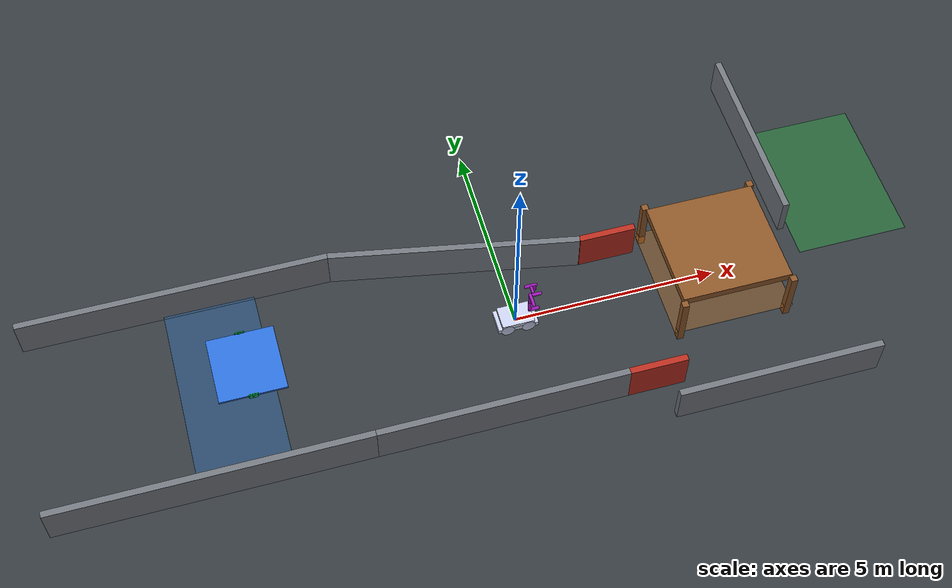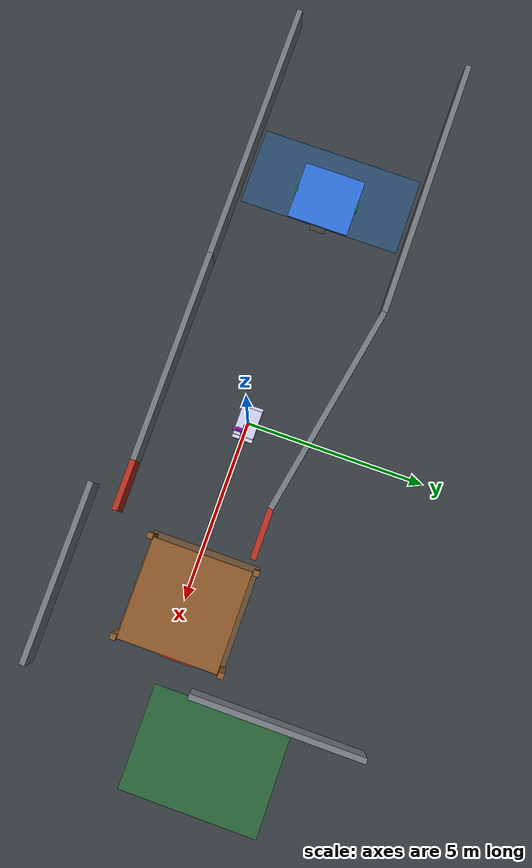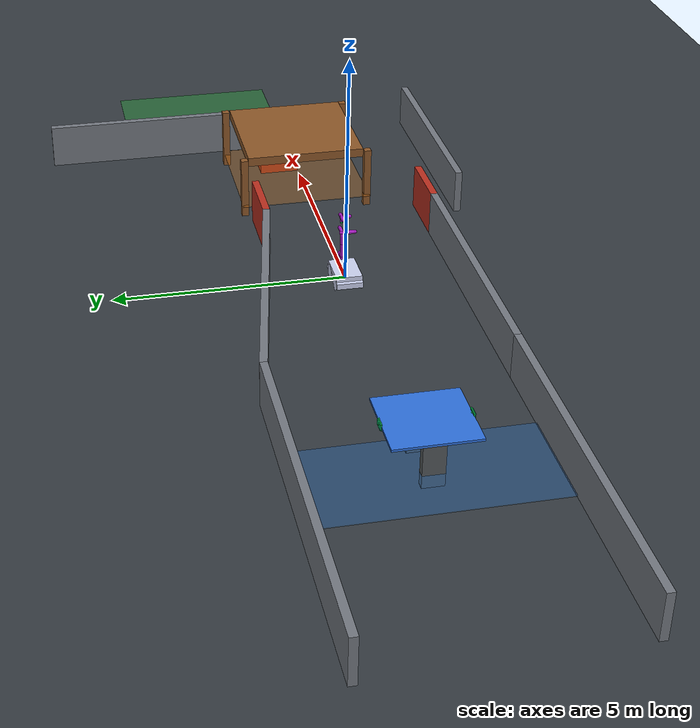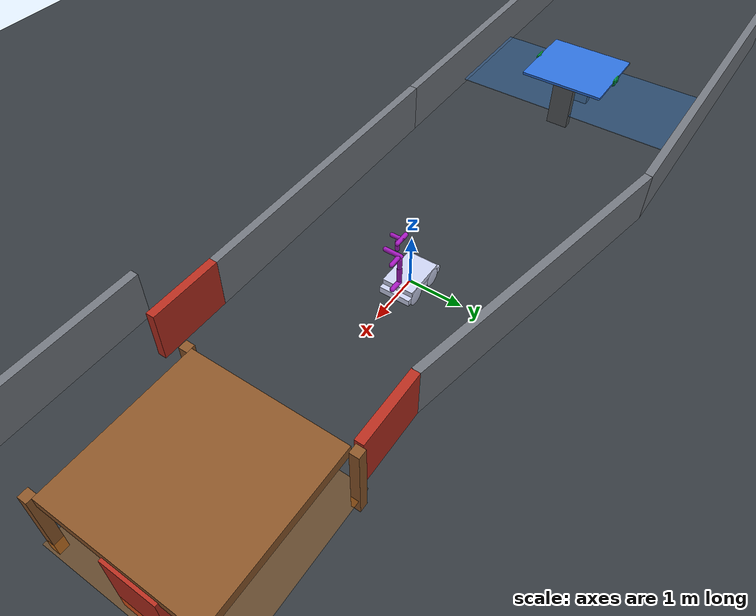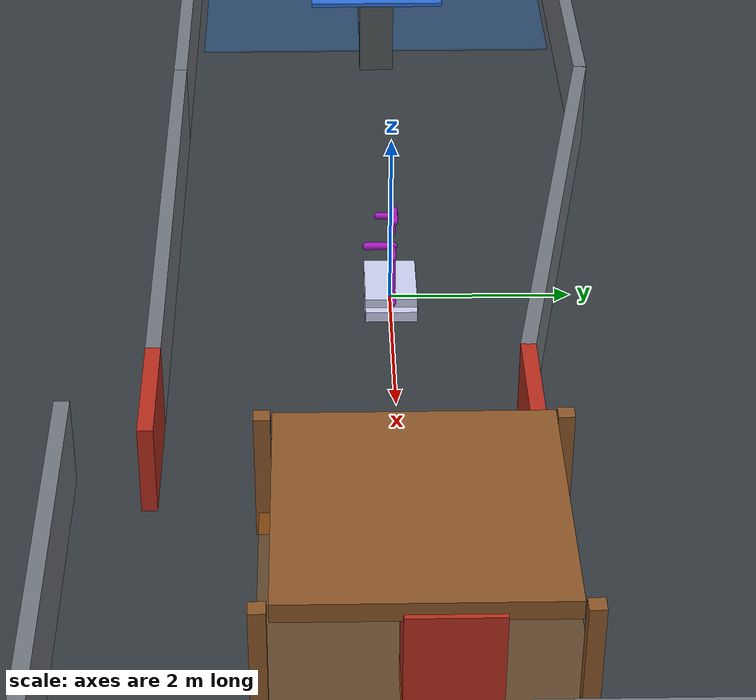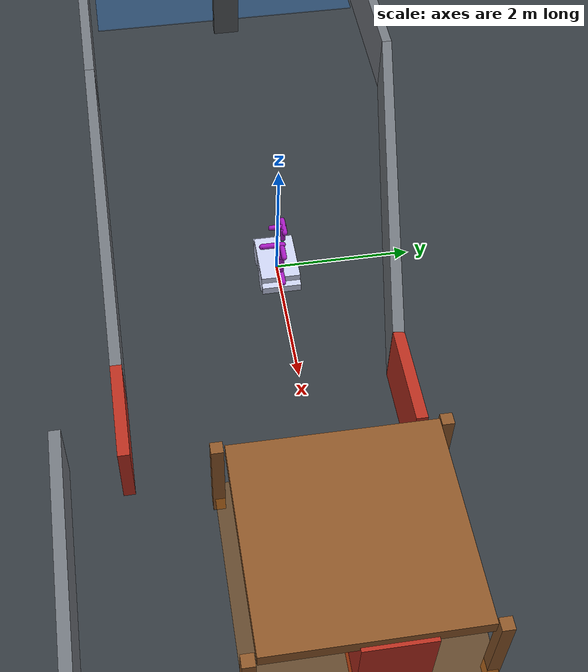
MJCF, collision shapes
<mujoco model="coop_transport_scene">
    <option timestep="0.002" iterations="20" noslip_iterations="8" tolerance="1e-6"/>
    <size njmax="5000" nconmax="1500"/>

    <include file="../robots/l_husky_with_panda_hand.xml"/>
    <include file="../robots/r_husky_with_panda_hand.xml"/>

    <asset>
        <texture name="coop_floor_tex" type="2d" builtin="checker"
                 rgb1="0.25 0.28 0.30" rgb2="0.16 0.18 0.20"
                 width="100" height="100"/>
        <material name="coop_floor_material" texture="coop_floor_tex" texuniform="true"/>
        <material name="corridor_wall_material" rgba="0.45 0.47 0.50 1"/>
        <material name="obstacle_material" rgba="0.72 0.18 0.12 1"/>
        <material name="low_ceiling_material" rgba="0.55 0.34 0.16 1"/>
        <material name="object_material" rgba="0.18 0.44 0.86 1"/>
        <material name="grasp_tab_material" rgba="0.03 0.72 0.42 1"/>
        <material name="grasp_marker_material" rgba="0.05 0.85 0.35 1"/>
        <material name="goal_marker_material" rgba="0.10 0.70 0.20 0.35"/>
    </asset>

    <visual>
        <map force="0.1"/>
    </visual>

    <default>
        <default class="viz">
            <geom contype="0" conaffinity="0" group="1" type="mesh" rgba=".6 .6 .7 1"/>
        </default>
        <default class="cls">
            <geom group="2" rgba="0.79216 0.81961 0.93333 0.5"/>
        </default>
        <default class="coop_static">
            <geom type="box" contype="1" conaffinity="1" condim="3" friction="1.0 0.05 0.001"/>
        </default>
        <default class="arm_collision">
            <geom type="capsule" contype="2" conaffinity="0" condim="3"
                  friction="0.8 0.02 0.001" rgba="0.65 0.10 0.75 0.18" group="3"/>
        </default>
        <default class="coop_visual">
            <geom contype="0" conaffinity="0" group="1"/>
        </default>
    </default>

    <worldbody>
        <geom name="ground" type="plane" size="24.0 16.0 1" pos="0 0 -0.25"
              material="coop_floor_material" condim="3" friction="1.0 0.05 0.001"/>

        <light directional="false" diffuse=".8 .8 .8" specular="0.3 0.3 0.3"
               pos="5 5 10" dir="-1 -1 -3"/>
        <light directional="false" diffuse=".8 .8 .8" specular="0.3 0.3 0.3"
               pos="5 -5 10" dir="-1 1 -3"/>
        <light directional="false" diffuse=".8 .8 .8" specular="0.3 0.3 0.3"
               pos="-7 0 10" dir="1 0 -3"/>
        <camera name="object_closeup" mode="targetbody" target="transport_object"
                pos="-6.40 -2.40 1.35" fovy="28"/>
        <camera name="leader_gripper_closeup" mode="targetbody" target="leader_object_grasp_frame"
                pos="-7.00 1.70 1.25" fovy="24"/>
        <camera name="follower_gripper_closeup" mode="targetbody" target="follower_object_grasp_frame"
                pos="-6.95 -1.70 1.25" fovy="24"/>
        <camera name="side_grasp_view" mode="targetbody" target="transport_object"
                pos="-8.30 0.00 1.25" fovy="30"/>

        <!-- Straight corridor section for leader replay and follower posture tests. -->
        <body name="wall_left_straight" pos="-7.75 2.50 0.25">
            <geom class="coop_static" name="wall_left_straight_geom" size="3.75 0.08 0.50"
                  material="corridor_wall_material"/>
        </body>
        <body name="wall_right_straight" pos="-7.75 -2.50 0.25">
            <geom class="coop_static" name="wall_right_straight_geom" size="3.75 0.08 0.50"
                  material="corridor_wall_material"/>
        </body>

        <!-- One-sided funnel: left wall gradually narrows while right wall stays straight. -->
        <body name="funnel_left_diagonal" pos="-1.00 1.925 0.25">
            <geom class="coop_static" name="funnel_left_diagonal_geom"
                  size="3.06 0.08 0.50" quat="0.9955 0 0 -0.0946"
                  material="corridor_wall_material"/>
        </body>
        <body name="funnel_right_straight" pos="-1.00 -2.50 0.25">
            <geom class="coop_static" name="funnel_right_straight_geom" size="3.00 0.08 0.50"
                  material="corridor_wall_material"/>
        </body>

        <!-- Short realistic narrow exit after the one-sided funnel. -->
        <body name="narrow_gate_left" pos="2.70 1.35 0.25">
            <geom class="coop_static" name="narrow_gate_left_geom" size="0.70 0.08 0.50"
                  material="obstacle_material"/>
        </body>
        <body name="narrow_gate_right" pos="2.70 -2.50 0.25">
            <geom class="coop_static" name="narrow_gate_right_geom" size="0.70 0.08 0.50"
                  material="obstacle_material"/>
        </body>

        <!-- Turning/obstacle-avoidance section after the passage. -->
        <body name="turn_wall_outer" pos="7.20 3.35 0.25">
            <geom class="coop_static" name="turn_wall_outer_geom" size="0.08 2.40 0.50"
                  material="corridor_wall_material"/>
        </body>
        <body name="turn_wall_inner" pos="5.40 -3.35 0.25">
            <geom class="coop_static" name="turn_wall_inner_geom" size="2.50 0.08 0.50"
                  material="corridor_wall_material"/>
        </body>
        <body name="route_obstacle" pos="6.10 0.35 0.35">
            <geom class="coop_static" name="route_obstacle_geom" size="0.35 0.45 0.70"
                  material="obstacle_material"/>
        </body>

        <!-- Low overhead hazard: the base can pass nearby, but a high arm posture can collide. -->
        <body name="low_ceiling_panel" pos="5.05 0.10 1.08">
            <geom class="coop_static" name="low_ceiling_panel_geom" size="1.35 1.35 0.10"
                  conaffinity="3" material="low_ceiling_material"/>
        </body>
        <body name="low_ceiling_left_post" pos="3.70 1.55 0.45">
            <geom class="coop_static" name="low_ceiling_left_post_geom" size="0.08 0.08 0.70"
                  conaffinity="3" material="low_ceiling_material"/>
        </body>
        <body name="low_ceiling_right_post" pos="3.70 -1.35 0.45">
            <geom class="coop_static" name="low_ceiling_right_post_geom" size="0.08 0.08 0.70"
                  conaffinity="3" material="low_ceiling_material"/>
        </body>
        <body name="low_ceiling_back_left_post" pos="6.40 1.55 0.45">
            <geom class="coop_static" name="low_ceiling_back_left_post_geom" size="0.08 0.08 0.70"
                  conaffinity="3" material="low_ceiling_material"/>
        </body>
        <body name="low_ceiling_back_right_post" pos="6.40 -1.35 0.45">
            <geom class="coop_static" name="low_ceiling_back_right_post_geom" size="0.08 0.08 0.70"
                  conaffinity="3" material="low_ceiling_material"/>
        </body>
        <geom class="coop_visual" name="low_ceiling_avoid_marker" type="box" pos="5.05 0.10 0.015"
              size="1.50 1.50 0.01" rgba="0.85 0.45 0.05 0.30"/>

        <!-- Non-colliding start and goal markers. -->
        <geom class="coop_visual" name="start_marker" type="box" pos="-7.00 0 0.01"
              size="1.10 2.30 0.01" rgba="0.10 0.45 0.85 0.30"/>
        <geom class="coop_visual" name="goal_marker" type="box" pos="8.70 1.90 0.01"
              size="1.40 1.90 0.01" material="goal_marker_material"/>

        <body name="object_start_support_front" pos="-6.98 0 0.265">
            <geom class="coop_static" name="object_start_support_front_geom"
                  size="0.08 0.22 0.515" rgba="0.32 0.34 0.35 1"/>
        </body>
        <body name="object_start_support_rear" pos="-5.92 0 0.265">
            <geom class="coop_static" name="object_start_support_rear_geom"
                  size="0.08 0.22 0.515" rgba="0.32 0.34 0.35 1"/>
        </body>

        <body name="transport_object" pos="-6.45 0 0.806">
            <freejoint name="transport_object_root"/>
            <inertial pos="0 0 0" mass="4.0" diaginertia="0.965 0.855 1.815"/>
            <geom name="transport_object_collision" type="box" size="0.80 0.85 0.025"
                  material="object_material" contype="1" conaffinity="1"
                  condim="3" friction="1.0 0.05 0.001"/>
            <geom class="coop_visual" name="transport_object_visual" type="box"
                  size="0.80 0.85 0.025" material="object_material"/>
            <!-- Grasp tabs make the fixed-weld grasp location visible as a
                 finger-sized edge feature. They are not a replacement for the
                 fixed weld constraints below. -->
            <geom name="leader_grasp_tab_collision" type="box" pos="0 0.86 0"
                  size="0.10 0.020 0.055" material="grasp_tab_material"
                  contype="1" conaffinity="1" condim="3" friction="1.5 0.05 0.001"/>
            <geom name="follower_grasp_tab_collision" type="box" pos="0 -0.86 0"
                  size="0.10 0.020 0.055" material="grasp_tab_material"
                  contype="1" conaffinity="1" condim="3" friction="1.5 0.05 0.001"/>
            <geom class="coop_visual" name="leader_grasp_marker" type="box"
                  pos="0 0.85 0" size="0.115 0.010 0.065" material="grasp_marker_material"/>
            <geom class="coop_visual" name="follower_grasp_marker" type="box"
                  pos="0 -0.85 0" size="0.115 0.010 0.065" material="grasp_marker_material"/>
            <body name="leader_object_grasp_frame" pos="0 0.85 0">
                <site name="leader_object_grasp_site" pos="0 0 0" size="0.04"
                      rgba="0.05 0.85 0.35 1"/>
            </body>
            <body name="follower_object_grasp_frame" pos="0 -0.85 0">
                <site name="follower_object_grasp_site" pos="0 0 0" size="0.04"
                      rgba="0.05 0.85 0.35 1"/>
            </body>
        </body>
    </worldbody>

    <!-- Fixed-joint transport constraints.
         These weld massless grasp frames rather than the object center to link7,
         so the initial constraint error is near zero at the coop_start keyframe. -->
    <equality>
        <weld name="object_to_leader_ee_fixed"
              body1="leader_object_grasp_frame" body2="l_ee_grasp_frame" active="true"
              relpose="0 0 0 1 0 0 0"
              solref="0.05 1" solimp="0.90 0.99 0.001"/>
        <weld name="object_to_follower_ee_fixed"
              body1="follower_object_grasp_frame" body2="r_ee_grasp_frame" active="true"
              relpose="0 0 0 1 0 0 0"
              solref="0.05 1" solimp="0.90 0.99 0.001"/>
    </equality>

    <keyframe>
        <!-- Settled fixed-weld start pose captured after passive stabilization. -->
        <key name="coop_start" time="0" qpos="
            -6.97847080614 0.906062745397 -0.117804816204 0.994510720318 8.5236500336e-05 7.47850650045e-05 0.104634670712
            0.0855532287497 0.0931091972452 -0.1766861989 0.0961644418282
            -0.0424381084146 0.18747649902 -0.361566131806 -0.385313073313 0.055835430123 0.565935379314
            -0.0111948773652 0.0193595241452 0.020494761076
            -6.9122032659 -0.925879013563 -0.117818665961 0.99382670098 -0.000119719525839 6.51927050026e-05 -0.110943543463
            0.494350212176 0.490354622532 0.493556884089 0.271273005128
            0.0938909379404 -0.661467153322 0.267638618645 -1.10015499697 0.385990640575 0.400329364492
            0.313250651234 0.0210741486513 0.0188843779964
            -6.40098837409 0.0389554017566 0.806 0.997602944526 -0.00282534677254 -0.000209928060309 -0.069139991452"/>
    </keyframe>
</mujoco>

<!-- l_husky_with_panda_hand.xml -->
<mujoco model="l_husky">
    <compiler angle="radian" meshdir="../meshes/" />
    <asset>
        <mesh name="top_plate" file="top_plate.stl" />
        <mesh name="top_chassis" file="top_chassis.stl"/>
        <mesh name="base_link" file="base_link.stl"/>
        <mesh name="user_rail" file="user_rail.stl"/>
        <mesh name="bumper" file="bumper.stl"/>
        <mesh name="wheel" file="wheel.stl"/>
        <mesh name="l_link0" file="link0.stl" />
        <mesh name="l_link1" file="link1.stl" />
        <mesh name="l_link2" file="link2.stl" />
        <mesh name="l_link3" file="link3.stl" />
        <mesh name="l_link4" file="link4.stl" />
        <mesh name="l_link5" file="link5.stl" />
        <mesh name="l_link6" file="link6.stl" />
        <mesh name="l_link7" file="link7.stl" />
        <mesh name="finger" file="finger.stl" />
        <mesh name="hand" file="hand.stl" />
    </asset>
    <worldbody>
        <body name="l_husky" pos = "0 0 0">
            <freejoint name="l_root"/>
            <inertial pos="0 0 0" quat="0.707107 0 0 0.707107"  mass = "46.034" fullinertia="0.6022 1.7386 2.0296 -0.02364 -0.1197 -0.001544"/>
            <geom class="cls" size="0.4937 0.28545 0.061875" pos="0 0 0.061875" type="box" />
            <geom class="cls" size="0.39496 0.28545 0.051875" pos="0 0 0.175625" type="box" />
            <geom class="viz" pos="0.0812 0 0.245" type="mesh" mesh="top_plate" rgba = "0.2 0.2 0.2 1.0" />
            <geom class="viz" pos="-0.48 0 0.091"  quat="0 0 1 0" type="mesh" mesh="bumper" rgba = "0.2 0.2 0.2 1.0"/>
            <geom class="viz" pos="0.48 0 0.091" type="mesh" mesh="bumper" rgba = "0.2 0.2 0.2 1.0" />
            <geom class="viz" pos="0 0 0" type="mesh" mesh="base_link" rgba = "0.8 0.8 0.0 1.0"/>
            <geom class="viz" pos="0 0 0" type="mesh" mesh="top_chassis" rgba = "0.8 0.8 0.0 1.0"/>
            <body name="l_front_left_wheel_link" pos="0.256 0.2854 0.03282">
                <inertial pos="0 0 0" quat="0.707107 0 0 0.707107" mass="2.637" diaginertia="0.04411 0.02467 0.02467" />
                <joint name="l_f-l-drive-hinge" type="hinge" pos="0 0 0" axis="0 1 0" damping="5" frictionloss="3"/>
                <geom class="viz" pos="0 0 0" rgba="0.20313 0.20313 0.20313 1" quat="0 0 0 1" mesh="wheel" />
                <geom name="l_f_wheel" class="cls" size="0.1651 0.1651 0.01" quat="0.707107 0.707106 0 0" type="ellipsoid"  />
            </body>
            <body name="l_front_right_wheel_link" pos="0.256 -0.2854 0.03282">
                <inertial pos="0 0 0" quat="0.707107 0 0 0.707107" mass="2.637" diaginertia="0.04411 0.02467 0.02467" />
                <joint name="l_f-r-drive-hinge" type="hinge" pos="0 0 0" axis="0 1 0"  damping="5." frictionloss="3"/>
                <geom class="viz" pos="0 0 0" rgba="0.20313 0.20313 0.20313 1" quat="0 0 0 1" mesh="wheel" />
                <geom name="r_f_wheel" class="cls" size="0.1651 0.1651 0.01" quat="0.707107 0.707106 0 0" type="ellipsoid" />
            </body>
            <body name="l_real_left_wheel_link" pos="-0.256 0.2854 0.03282">
                <inertial pos="0 0 0" quat="0.707107 0 0 0.707107" mass="2.637" diaginertia="0.04411 0.02467 0.02467" />
                <joint name="l_r-l-drive-hinge" type="hinge" pos="0 0 0" axis="0 1 0" damping="5." frictionloss="3"/>
                <geom class="viz" pos="0 0 0" rgba="0.20313 0.20313 0.20313 1" quat="0 0 0 1" mesh="wheel" />
                <geom name="l_r_wheel" class="cls" size="0.1651 0.1651 0.01" quat="0.707107 0.707106 0 0" type="ellipsoid" />
            </body>
            <body name="l_real_right_wheel_link" pos="-0.256 -0.2854 0.03282">
                <inertial pos="0 0 0" quat="0.707107 0 0 0.707107" mass="2.637" diaginertia="0.04411 0.02467 0.02467" />
                <joint name="l_r-r-drive-hinge" type="hinge" pos="0 0 0" axis="0 1 0"  damping="5." frictionloss="3"/>
                <geom class="viz" pos="0 0 0" rgba="0.20313 0.20313 0.20313 1" quat="0 0 1 0" mesh="wheel" />
                <geom name="r_r_wheel"  class="cls" size="0.1651 0.1651 0.01" quat="0.707107 0.707106 0 0" type="ellipsoid" />
            </body>
	<body name="l_panda_link0" pos="0.35 0 0.25" quat="1 0 0 0">
			<geom class="viz" type="mesh" mesh="l_link0" rgba=".95 .99 .92 1" />
            <geom class="arm_collision" name="l_panda_link0_simple_col" size="0.045"
                  fromto="0 0 0.04 0.20 0 0.04"/>
			<body name="l_panda_link1" pos="-0.0 0 0.333">
		    <inertial pos="0.003875 0.002081 -0.175" quat="0.711549 0.00634377 -0.0131124 0.702485" mass="4.97068" diaginertia="0.707137 0.703435 0.00852456" />
		    <joint name="l_panda_joint1" pos="0 0 0" axis="0 0 1" limited="true" range="-2.8973 2.8973" damping="10" frictionloss="5" />
			    <geom class="viz" type="mesh" mesh="l_link1" rgba=".95 .99 .92 1" />
                <geom class="arm_collision" name="l_panda_link1_simple_col" size="0.045"
                      fromto="0 0 -0.24 0 0 0.02"/>
		    <body name="l_panda_link2" pos="0 0 0" quat="0.707107 -0.707107 0 0">
		        <inertial pos="-0.003141 -0.02872 0.003495" quat="-0.168175 0.828366 -0.122878 0.520027" mass="0.646926" diaginertia="0.0310326 0.0283001 0.00273425" />
		        <joint name="l_panda_joint2" pos="0 0 0" axis="0 0 1" limited="true" range="-1.7628 1.7628" damping="5" frictionloss="2" />
			        <geom class="viz" type="mesh" mesh="l_link2" rgba=".95 .99 .92 1" />
                    <geom class="arm_collision" name="l_panda_link2_simple_col" size="0.04"
                          fromto="0 -0.24 0 0 0.02 0"/>
		        <body name="l_panda_link3" pos="0 -0.316 0" quat="0.707107 0.707107 0 0">
		            <inertial pos="0.027518 0.039252 -0.066502" quat="0.662769 -0.00678331 0.252053 0.705096" mass="3.2286" diaginertia="0.0415014 0.0414793 0.00124635" />
		            <joint name="l_panda_joint3" pos="0 0 0" axis="0 0 1" limited="true" range="-2.8973 2.8973" damping="5" frictionloss="2" />
			            <geom class="viz" type="mesh" mesh="l_link3" rgba=".95 .99 .92 1" />
                        <geom class="arm_collision" name="l_panda_link3_simple_col" size="0.04"
                              fromto="0 -0.28 0 0 0.02 0"/>
		            <body name="l_panda_link4" pos="0.0825 0 0" quat="0.707107 0.707107 0 0">
		                <inertial pos="-0.05317 0.104419 0.027454" quat="0.65058 0.529822 -0.0962034 0.535518" mass="3.5879" diaginertia="0.0349596 0.0281483 0.0106201" />
		                <joint name="l_panda_joint4" pos="0 0 0" axis="0 0 1" limited="true" range="-3.0718 -0.0698" damping="1" frictionloss="0.5" />
			                <geom class="viz" type="mesh" mesh="l_link4" rgba=".95 .99 .92 1"/>
                            <geom class="arm_collision" name="l_panda_link4_simple_col" size="0.04"
                                  fromto="-0.02 0 0 0.16 0 0"/>
		                <body name="l_panda_link5" pos="-0.0825 0.384 0" quat="0.707107 -0.707107 0 0">
		                    <inertial pos="-0.011953 0.041065 -0.038437" quat="0.987313 -0.0121954 0.0719187 -0.141037" mass="1.22595" diaginertia="0.0367625 0.0288531 0.00803437" />
		                    <joint name="l_panda_joint5" pos="0 0 0" axis="0 0 1" limited="true" range="-2.8973 2.8973" damping="2" frictionloss="1" />
			                    <geom class="viz" type="mesh" mesh="l_link5" rgba=".95 .99 .92 1" />
                                <geom class="arm_collision" name="l_panda_link5_simple_col" size="0.04"
                                      fromto="-0.12 0.02 0 0.12 0.02 0"/>
		                    <body name="l_panda_link6" pos="0 0 0" quat="0.707107 0.707107 0 0">
		                        <inertial pos="0.060149 -0.014117 -0.010517" quat="0.101075 0.59332 0.0287227 0.798079" mass="1.66656" diaginertia="0.00584276 0.00431037 0.00159787" />
		                        <joint name="l_panda_joint6" pos="0 0 0" axis="0 0 1" limited="true" range="-0.0175 3.7525" damping="1" frictionloss="0.5" />
			                        <geom class="viz" type="mesh" mesh="l_link6" rgba=".95 .99 .92 1" />
                                    <geom class="arm_collision" name="l_panda_link6_simple_col" size="0.035"
                                          fromto="0 0 -0.03 0 0 0.16"/>
		                        <body name="l_panda_link7" pos="0.088 0 0" quat="0.707107 0.707107 0 0">
		                            <inertial pos="0.010517 -0.004252 0.061597" quat="0.992939 -0.0762041 0.0733595 -0.0537067" mass="1.46552" diaginertia="0.0168829 0.0130722 0.00714258" />
		                            <joint name="l_panda_joint7" pos="0 0 0" axis="0 0 1" limited="true" range="-2.8973 2.8973" damping="1" frictionloss="0.5" />
		                            <geom class="viz" type="mesh" mesh="l_link7" rgba=".95 .99 .92 1" />
                                    <geom class="arm_collision" name="l_panda_link7_simple_col" size="0.035"
                                          fromto="0 0 0 0 0 0.16"/>
                                    <body name="l_ee_grasp_frame" pos="0 0 0.1654" quat="0 1 0 0">
                                        <site name="l_ee_grasp_site" pos="0 0 0" size="0.035"
                                              rgba="0.05 0.85 0.35 1"/>
                                    </body>
                                    <geom class="viz" pos="0 0 0.107" quat="0.92388 0 0 -0.382683" type="mesh" mesh="hand" rgba=".95 .99 .92 1"/>
                                    <body name="l_panda_leftfinger" pos="0 0 0.1654" quat="0.92388 0 0 -0.382683">
                                        <inertial pos="0 0.0145644 0.0227941" mass="0.1" diaginertia="3.01221e-05 2.95874e-05 6.95125e-06" />
                                        <joint name="l_panda_finger_joint1" pos="0 0 0" axis="0 1 0" type="slide" limited="true" range="0 0.04" damping="500" />
                                        <geom class="viz" type="mesh" mesh="finger" rgba=".95 .99 .92 1"/>
                                        <geom class="cls" quat="0 0 0 1" size="0.005 0.005 0.0135" pos="0.0 0 0.035"  friction="1.0 1.0 1.0" type="box"/>
                                    </body>
                                    <body name="l_panda_rightfinger" pos="0 0 0.1654" quat="0.92388 0 0 -0.382683">
                                        <inertial pos="0 -0.0145644 0.0227941" quat="0 0 0 1" mass="0.1" diaginertia="3.01221e-05 2.95874e-05 6.95125e-06" />
                                        <joint name="l_panda_finger_joint2" pos="0 0 0" axis="0 -1 0" type="slide" limited="true" range="0 0.04" damping="500" />
                                        <geom class="viz" quat="0 0 0 1" type="mesh" mesh="finger" rgba=".95 .99 .92 1"/>
                                        <geom class="cls" quat="0 0 0 1" size="0.005 0.005 0.0135" pos="0.0 0 0.035"  friction="1.0 1.0 1.0" type="box"/>
                                    </body>
		                        </body>
		                    </body>
		                </body>
		            </body>
		        </body>
		    </body>
		</body>
		</body>
        </body>
    </worldbody>

    <actuator>
        <motor name="l_f_l" joint="l_f-l-drive-hinge"/>
        <motor name="l_f_r" joint="l_f-r-drive-hinge"/>
        <motor name="l_l_l" joint="l_r-l-drive-hinge"/>
        <motor name="l_l_r" joint="l_r-r-drive-hinge"/>
        <motor name="l_panda_joint1_Motor" joint="l_panda_joint1"/>
        <motor name="l_panda_joint2_Motor" joint="l_panda_joint2"/>
        <motor name="l_panda_joint3_Motor" joint="l_panda_joint3"/>
        <motor name="l_panda_joint4_Motor" joint="l_panda_joint4"/>
        <motor name="l_panda_joint5_Motor" joint="l_panda_joint5"/>
        <motor name="l_panda_joint6_Motor" joint="l_panda_joint6"/>
        <motor name="l_panda_joint7_Motor" joint="l_panda_joint7"/>
        <motor name="l_panda_finger_joint1_Motor" joint="l_panda_finger_joint1"/>
        <motor name="l_panda_finger_joint2_Motor" joint="l_panda_finger_joint2"/>
    </actuator>
</mujoco>

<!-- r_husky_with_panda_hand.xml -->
<mujoco model="r_husky">
    <compiler angle="radian" meshdir="../meshes/" />
    <asset>
        <mesh name="r_link0" file="link0.stl" />
        <mesh name="r_link1" file="link1.stl" />
        <mesh name="r_link2" file="link2.stl" />
        <mesh name="r_link3" file="link3.stl" />
        <mesh name="r_link4" file="link4.stl" />
        <mesh name="r_link5" file="link5.stl" />
        <mesh name="r_link6" file="link6.stl" />
        <mesh name="r_link7" file="link7.stl" />
    </asset>
    <worldbody>
        <body name="r_husky" pos = "0 0 0">
            <freejoint name="r_root"/>
            <inertial pos="0 0 0" quat="0.707107 0 0 0.707107"  mass = "46.034" fullinertia="0.6022 1.7386 2.0296 -0.02364 -0.1197 -0.001544"/>
            <geom class="cls" size="0.4937 0.28545 0.061875" pos="0 0 0.061875" type="box" />
            <geom class="cls" size="0.39496 0.28545 0.051875" pos="0 0 0.175625" type="box" />
            <geom class="viz" pos="0.0812 0 0.245" type="mesh" mesh="top_plate" rgba = "0.2 0.2 0.2 1.0" />
            <geom class="viz" pos="-0.48 0 0.091"  quat="0 0 1 0" type="mesh" mesh="bumper" rgba = "0.2 0.2 0.2 1.0"/>
            <geom class="viz" pos="0.48 0 0.091" type="mesh" mesh="bumper" rgba = "0.2 0.2 0.2 1.0" />
            <geom class="viz" pos="0 0 0" type="mesh" mesh="base_link" rgba = "0.8 0.8 0.0 1.0"/>
            <geom class="viz" pos="0 0 0" type="mesh" mesh="top_chassis" rgba = "0.8 0.8 0.0 1.0"/>
            <body name="r_front_left_wheer_link" pos="0.256 0.2854 0.03282">
                <inertial pos="0 0 0" quat="0.707107 0 0 0.707107" mass="2.637" diaginertia="0.04411 0.02467 0.02467" />
                <joint name="r_f-l-drive-hinge" type="hinge" pos="0 0 0" axis="0 1 0" damping="10.0"/>
                <geom class="viz" pos="0 0 0" rgba="0.20313 0.20313 0.20313 1" quat="0 0 0 1" mesh="wheel" />
                <geom class="cls" size="0.1651 0.1651 0.01" quat="0.707107 0.707106 0 0" type="ellipsoid" />
            </body>
            <body name="r_front_right_wheer_link" pos="0.256 -0.2854 0.03282">
                <inertial pos="0 0 0" quat="0.707107 0 0 0.707107" mass="2.637" diaginertia="0.04411 0.02467 0.02467" />
                <joint name="r_f-r-drive-hinge" type="hinge" pos="0 0 0" axis="0 1 0" damping="10.0"/>
                <geom class="viz" pos="0 0 0" rgba="0.20313 0.20313 0.20313 1" quat="0 0 0 1" mesh="wheel" />
                <geom class="cls" size="0.1651 0.1651 0.01" quat="0.707107 0.707106 0 0" type="ellipsoid"/>
            </body>
            <body name="r_rear_left_wheer_link" pos="-0.256 0.2854 0.03282">
                <inertial pos="0 0 0" quat="0.707107 0 0 0.707107" mass="2.637" diaginertia="0.04411 0.02467 0.02467" />
                <joint name="r_r-l-drive-hinge" type="hinge" pos="0 0 0" axis="0 1 0" damping="10.0"/>
                <geom class="viz" pos="0 0 0" rgba="0.20313 0.20313 0.20313 1" quat="0 0 0 1" mesh="wheel" />
                <geom class="cls" size="0.1651 0.1651 0.01" quat="0.707107 0.707106 0 0" type="ellipsoid"/>
            </body>
            <body name="r_rear_right_wheer_link" pos="-0.256 -0.2854 0.03282">
                <inertial pos="0 0 0" quat="0.707107 0 0 0.707107" mass="2.637" diaginertia="0.04411 0.02467 0.02467" />
                <joint name="r_r-r-drive-hinge" type="hinge" pos="0 0 0" axis="0 1 0" damping="10.0"/>
                <geom class="viz" pos="0 0 0" rgba="0.20313 0.20313 0.20313 1" quat="0 0 1 0" mesh="wheel" />
                <geom class="cls" size="0.1651 0.1651 0.01" quat="0.707107 0.707106 0 0" type="ellipsoid"/>
            </body>
	<body name="r_panda_link0" pos="0.35 0 0.25" quat="1 0 0 0">
			<geom class="viz" type="mesh" mesh="r_link0" rgba=".95 .99 .92 1" />
            <geom class="arm_collision" name="r_panda_link0_simple_col" size="0.045"
                  fromto="0 0 0.04 0.20 0 0.04"/>
			<body name="r_panda_link1" pos="-0.0 0 0.333">
		    <inertial pos="0.003875 0.002081 -0.175" quat="0.711549 0.00634377 -0.0131124 0.702485" mass="4.97068" diaginertia="0.707137 0.703435 0.00852456" />
		    <joint name="r_panda_joint1" pos="0 0 0" axis="0 0 1" limited="true" range="-2.8973 2.8973" damping="10" frictionloss="5" />
			    <geom class="viz" type="mesh" mesh="r_link1" rgba=".95 .99 .92 1" />
                <geom class="arm_collision" name="r_panda_link1_simple_col" size="0.045"
                      fromto="0 0 -0.24 0 0 0.02"/>
		    <body name="r_panda_link2" pos="0 0 0" quat="0.707107 -0.707107 0 0">
		        <inertial pos="-0.003141 -0.02872 0.003495" quat="-0.168175 0.828366 -0.122878 0.520027" mass="0.646926" diaginertia="0.0310326 0.0283001 0.00273425" />
		        <joint name="r_panda_joint2" pos="0 0 0" axis="0 0 1" limited="true" range="-1.7628 1.7628" damping="5" frictionloss="2" />
			        <geom class="viz" type="mesh" mesh="r_link2" rgba=".95 .99 .92 1" />
                    <geom class="arm_collision" name="r_panda_link2_simple_col" size="0.04"
                          fromto="0 -0.24 0 0 0.02 0"/>
		        <body name="r_panda_link3" pos="0 -0.316 0" quat="0.707107 0.707107 0 0">
		            <inertial pos="0.027518 0.039252 -0.066502" quat="0.662769 -0.00678331 0.252053 0.705096" mass="3.2286" diaginertia="0.0415014 0.0414793 0.00124635" />
		            <joint name="r_panda_joint3" pos="0 0 0" axis="0 0 1" limited="true" range="-2.8973 2.8973" damping="5" frictionloss="2" />
			            <geom class="viz" type="mesh" mesh="r_link3" rgba=".95 .99 .92 1" />
                        <geom class="arm_collision" name="r_panda_link3_simple_col" size="0.04"
                              fromto="0 -0.28 0 0 0.02 0"/>
		            <body name="r_panda_link4" pos="0.0825 0 0" quat="0.707107 0.707107 0 0">
		                <inertial pos="-0.05317 0.104419 0.027454" quat="0.65058 0.529822 -0.0962034 0.535518" mass="3.5879" diaginertia="0.0349596 0.0281483 0.0106201" />
		                <joint name="r_panda_joint4" pos="0 0 0" axis="0 0 1" limited="true" range="-3.0718 -0.0698" damping="1" frictionloss="0.5" />
			                <geom class="viz" type="mesh" mesh="r_link4" rgba=".95 .99 .92 1"/>
                            <geom class="arm_collision" name="r_panda_link4_simple_col" size="0.04"
                                  fromto="-0.02 0 0 0.16 0 0"/>
		                <body name="r_panda_link5" pos="-0.0825 0.384 0" quat="0.707107 -0.707107 0 0">
		                    <inertial pos="-0.011953 0.041065 -0.038437" quat="0.987313 -0.0121954 0.0719187 -0.141037" mass="1.22595" diaginertia="0.0367625 0.0288531 0.00803437" />
		                    <joint name="r_panda_joint5" pos="0 0 0" axis="0 0 1" limited="true" range="-2.8973 2.8973" damping="2" frictionloss="1" />
			                    <geom class="viz" type="mesh" mesh="r_link5" rgba=".95 .99 .92 1" />
                                <geom class="arm_collision" name="r_panda_link5_simple_col" size="0.04"
                                      fromto="-0.12 0.02 0 0.12 0.02 0"/>
		                    <body name="r_panda_link6" pos="0 0 0" quat="0.707107 0.707107 0 0">
		                        <inertial pos="0.060149 -0.014117 -0.010517" quat="0.101075 0.59332 0.0287227 0.798079" mass="1.66656" diaginertia="0.00584276 0.00431037 0.00159787" />
		                        <joint name="r_panda_joint6" pos="0 0 0" axis="0 0 1" limited="true" range="-0.0175 3.7525" damping="1" frictionloss="0.5" />
			                        <geom class="viz" type="mesh" mesh="r_link6" rgba=".95 .99 .92 1" />
                                    <geom class="arm_collision" name="r_panda_link6_simple_col" size="0.035"
                                          fromto="0 0 -0.03 0 0 0.16"/>
		                        <body name="r_panda_link7" pos="0.088 0 0" quat="0.707107 0.707107 0 0">
		                            <inertial pos="0.010517 -0.004252 0.061597" quat="0.992939 -0.0762041 0.0733595 -0.0537067" mass="1.46552" diaginertia="0.0168829 0.0130722 0.00714258" />
		                            <joint name="r_panda_joint7" pos="0 0 0" axis="0 0 1" limited="true" range="-2.8973 2.8973" damping="1" frictionloss="0.5" />
		                            <geom class="viz" type="mesh" mesh="r_link7" rgba=".95 .99 .92 1" />
                                    <geom class="arm_collision" name="r_panda_link7_simple_col" size="0.035"
                                          fromto="0 0 0 0 0 0.16"/>
                                    <body name="r_ee_grasp_frame" pos="0 0 0.1654" quat="0 1 0 0">
                                        <site name="r_ee_grasp_site" pos="0 0 0" size="0.035"
                                              rgba="0.05 0.85 0.35 1"/>
                                    </body>
                                    <geom class="viz" pos="0 0 0.107" quat="0.92388 0 0 -0.382683" type="mesh" mesh="hand" rgba=".95 .99 .92 1"/>
                                    <body name="r_panda_leftfinger" pos="0 0 0.1654" quat="0.92388 0 0 -0.382683">
                                        <inertial pos="0 0.0145644 0.0227941" mass="0.1" diaginertia="3.01221e-05 2.95874e-05 6.95125e-06" />
                                        <joint name="r_panda_finger_joint1" pos="0 0 0" axis="0 1 0" type="slide" limited="true" range="0 0.04" damping="500" />
                                        <geom class="viz" type="mesh" mesh="finger" rgba=".95 .99 .92 1"/>
                                        <geom class="cls" quat="0 0 0 1" size="0.005 0.005 0.0135" pos="0.0 0 0.035"  friction="1.0 1.0 1.0" type="box"/>
                                    </body>
                                    <body name="r_panda_rightfinger" pos="0 0 0.1654" quat="0.92388 0 0 -0.382683">
                                        <inertial pos="0 -0.0145644 0.0227941" quat="0 0 0 1" mass="0.1" diaginertia="3.01221e-05 2.95874e-05 6.95125e-06" />
                                        <joint name="r_panda_finger_joint2" pos="0 0 0" axis="0 -1 0" type="slide" limited="true" range="0 0.04" damping="500" />
                                        <geom class="viz" quat="0 0 0 1" type="mesh" mesh="finger" rgba=".95 .99 .92 1"/>
                                        <geom class="cls" quat="0 0 0 1" size="0.005 0.005 0.0135" pos="0.0 0 0.035"  friction="1.0 1.0 1.0" type="box"/>
                                    </body>
		                        </body>
		                    </body>
		                </body>
		            </body>
		        </body>
		    </body>
		</body>
		</body>
        </body>
    </worldbody>

    <actuator>
        <motor name="r_f_l" joint="r_f-l-drive-hinge"/>
        <motor name="r_f_r" joint="r_f-r-drive-hinge"/>
        <motor name="r_r_l" joint="r_r-l-drive-hinge"/>
        <motor name="r_r_r" joint="r_r-r-drive-hinge"/>
        <motor name="r_panda_joint1_Motor" joint="r_panda_joint1"/>
        <motor name="r_panda_joint2_Motor" joint="r_panda_joint2"/>
        <motor name="r_panda_joint3_Motor" joint="r_panda_joint3"/>
        <motor name="r_panda_joint4_Motor" joint="r_panda_joint4"/>
        <motor name="r_panda_joint5_Motor" joint="r_panda_joint5"/>
        <motor name="r_panda_joint6_Motor" joint="r_panda_joint6"/>
        <motor name="r_panda_joint7_Motor" joint="r_panda_joint7"/>
        <motor name="r_panda_finger_joint1_Motor" joint="r_panda_finger_joint1"/>
        <motor name="r_panda_finger_joint2_Motor" joint="r_panda_finger_joint2"/>
    </actuator>
</mujoco>
